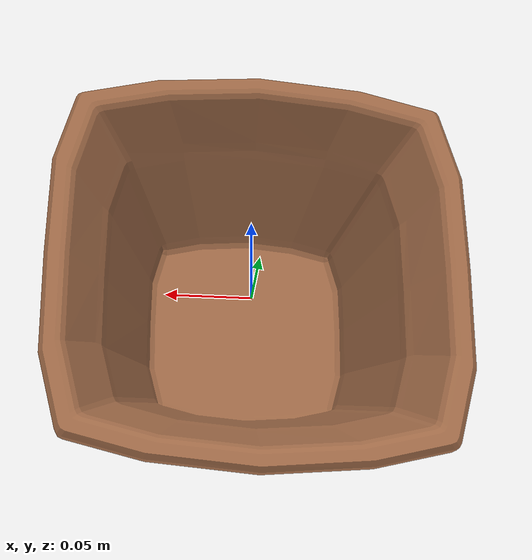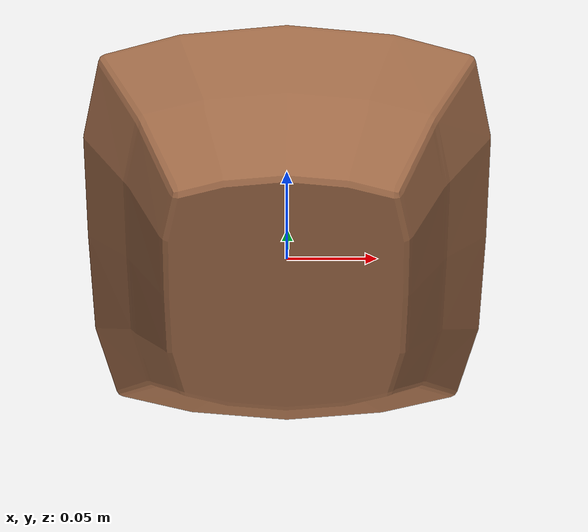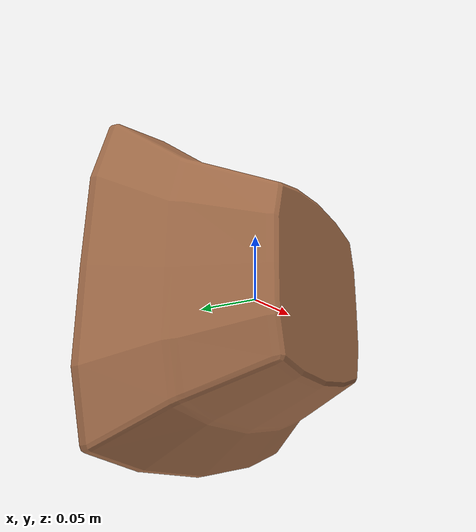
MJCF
<mujoco model="Bowl_21">
  <default>
    <default class="visual">
      <geom group="2" type="mesh" contype="0" conaffinity="0"/>
    </default>
    <default class="collision">
      <geom group="3" type="mesh"/>
    </default>
  </default>
  <asset>
    <material name="Bowl_Mat5 (Plastic - UB)" specular="0.5" shininess="0.5" rgba="0.6323529 0.4207135 0.2836289 1.0"/>
    <material name="Bowl_Decals_Off_Mat" specular="0.5" shininess="0.5" rgba="1 1 1 0"/>
    <mesh file="Bowl_21_0.obj"/>
    <mesh file="Bowl_21_1.obj"/>
    <mesh file="Bowl_21_collision_0.obj"/>
    <mesh file="Bowl_21_collision_1.obj"/>
    <mesh file="Bowl_21_collision_2.obj"/>
    <mesh file="Bowl_21_collision_3.obj"/>
    <mesh file="Bowl_21_collision_4.obj"/>
    <mesh file="Bowl_21_collision_5.obj"/>
    <mesh file="Bowl_21_collision_6.obj"/>
    <mesh file="Bowl_21_collision_7.obj"/>
    <mesh file="Bowl_21_collision_8.obj"/>
    <mesh file="Bowl_21_collision_9.obj"/>
    <mesh file="Bowl_21_collision_10.obj"/>
    <mesh file="Bowl_21_collision_11.obj"/>
    <mesh file="Bowl_21_collision_12.obj"/>
    <mesh file="Bowl_21_collision_13.obj"/>
    <mesh file="Bowl_21_collision_14.obj"/>
    <mesh file="Bowl_21_collision_15.obj"/>
    <mesh file="Bowl_21_collision_16.obj"/>
    <mesh file="Bowl_21_collision_17.obj"/>
    <mesh file="Bowl_21_collision_18.obj"/>
    <mesh file="Bowl_21_collision_19.obj"/>
    <mesh file="Bowl_21_collision_20.obj"/>
    <mesh file="Bowl_21_collision_21.obj"/>
    <mesh file="Bowl_21_collision_22.obj"/>
    <mesh file="Bowl_21_collision_23.obj"/>
    <mesh file="Bowl_21_collision_24.obj"/>
    <mesh file="Bowl_21_collision_25.obj"/>
    <mesh file="Bowl_21_collision_26.obj"/>
    <mesh file="Bowl_21_collision_27.obj"/>
    <mesh file="Bowl_21_collision_28.obj"/>
    <mesh file="Bowl_21_collision_29.obj"/>
  </asset>
  <worldbody>
    <body name="Bowl_21">
      <geom mesh="Bowl_21_0" material="Bowl_Decals_Off_Mat" class="visual"/>
      <geom mesh="Bowl_21_1" material="Bowl_Mat5 (Plastic - UB)" class="visual"/>
      <geom mesh="Bowl_21_collision_0" rgba="0.8551651650493067 0.20921567464862612 0.30895965279871485 1" class="collision"/>
      <geom mesh="Bowl_21_collision_1" rgba="0.04344367145053685 0.4697259908870931 0.5075073267886988 1" class="collision"/>
      <geom mesh="Bowl_21_collision_2" rgba="0.520416667020256 0.42319305819825037 0.4454827425037826 1" class="collision"/>
      <geom mesh="Bowl_21_collision_3" rgba="0.8364447295337238 0.8553246426817862 0.5295438178931613 1" class="collision"/>
      <geom mesh="Bowl_21_collision_4" rgba="0.7225506504772844 0.1623094730853304 0.6213324674256949 1" class="collision"/>
      <geom mesh="Bowl_21_collision_5" rgba="0.1603224456837119 0.07726536164683784 0.6840342985842804 1" class="collision"/>
      <geom mesh="Bowl_21_collision_6" rgba="0.07716584674561555 0.7837629488425703 0.5183353533949392 1" class="collision"/>
      <geom mesh="Bowl_21_collision_7" rgba="0.6187499174203971 0.5092459246338665 0.5159937421416421 1" class="collision"/>
      <geom mesh="Bowl_21_collision_8" rgba="0.9086295841787299 0.31176064329221875 0.18201478712946217 1" class="collision"/>
      <geom mesh="Bowl_21_collision_9" rgba="0.9322049706121396 0.2773364014774633 0.6681716854968008 1" class="collision"/>
      <geom mesh="Bowl_21_collision_10" rgba="0.4322941126637344 0.08585163492876524 0.47534154807192097 1" class="collision"/>
      <geom mesh="Bowl_21_collision_11" rgba="0.6348516723497695 0.9133885959964052 0.7225002218677397 1" class="collision"/>
      <geom mesh="Bowl_21_collision_12" rgba="0.036584425419960986 0.5145875872010635 0.7755485427235693 1" class="collision"/>
      <geom mesh="Bowl_21_collision_13" rgba="0.47086507810146994 0.295775475146118 0.8036860289006804 1" class="collision"/>
      <geom mesh="Bowl_21_collision_14" rgba="0.6727905725573393 0.1280032977589003 0.3621927807840899 1" class="collision"/>
      <geom mesh="Bowl_21_collision_15" rgba="0.8292642003344388 0.9054763896025935 0.6466742840787562 1" class="collision"/>
      <geom mesh="Bowl_21_collision_16" rgba="0.2108820922494723 0.0701476550952197 0.9337062708390079 1" class="collision"/>
      <geom mesh="Bowl_21_collision_17" rgba="0.10214900892718459 0.6531407411186695 0.8327055117653068 1" class="collision"/>
      <geom mesh="Bowl_21_collision_18" rgba="0.8730977363239849 0.8124362756878151 0.6471958802078687 1" class="collision"/>
      <geom mesh="Bowl_21_collision_19" rgba="0.32122783039617053 0.6493438707189085 0.848813725223837 1" class="collision"/>
      <geom mesh="Bowl_21_collision_20" rgba="0.9051923338718761 0.257442798164602 0.17101656821576394 1" class="collision"/>
      <geom mesh="Bowl_21_collision_21" rgba="0.9320886911613647 0.718338629167877 0.3055779546436904 1" class="collision"/>
      <geom mesh="Bowl_21_collision_22" rgba="0.5963957313826406 0.6576108532685019 0.6417496406507583 1" class="collision"/>
      <geom mesh="Bowl_21_collision_23" rgba="0.230278524245622 0.3364895689913744 0.4444262950091481 1" class="collision"/>
      <geom mesh="Bowl_21_collision_24" rgba="0.4122503075519789 0.6844007873466013 0.541532026693999 1" class="collision"/>
      <geom mesh="Bowl_21_collision_25" rgba="0.957873369307526 0.8361604811227024 0.9848011373199711 1" class="collision"/>
      <geom mesh="Bowl_21_collision_26" rgba="0.6757781795113601 0.18307455783335136 0.4462102745741041 1" class="collision"/>
      <geom mesh="Bowl_21_collision_27" rgba="0.6912662808355843 0.24337696271402076 0.25526383933916286 1" class="collision"/>
      <geom mesh="Bowl_21_collision_28" rgba="0.6778618745791836 0.2805657334386771 0.27315659809523607 1" class="collision"/>
      <geom mesh="Bowl_21_collision_29" rgba="0.04979343326537866 0.17094215631047416 0.6487022963022461 1" class="collision"/>
    </body>
  </worldbody>
</mujoco>
